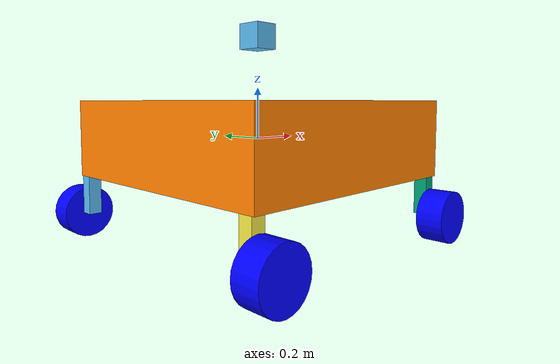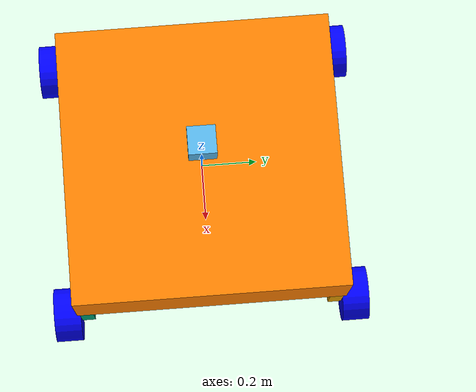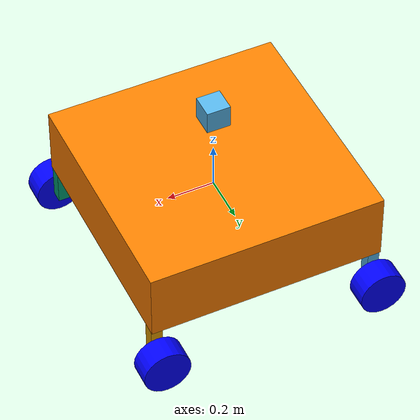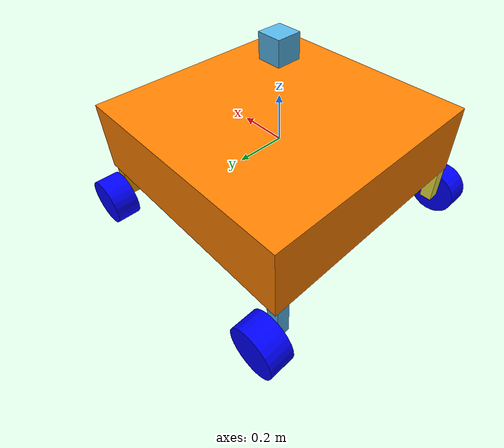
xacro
<?xml version="1.0"?>
<robot name="durian_robot" xmlns:xacro="http://www.ros.org/wiki/xacro">
    <!-- Core -->
    <xacro:include filename="$(find robot_description)/urdf/robot_core.xacro"/>
    <!-- Gazebo -->
    <xacro:include filename="$(find robot_description)/urdf/robot_gazebo.xacro"/>
    <!-- Sensors -->
    <xacro:include filename="$(find robot_description)/urdf/robot_sensor.xacro"/>

</robot>

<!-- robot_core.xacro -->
<robot xmlns:xacro="http://www.ros.org/wiki/xacro" >
    <!-- Include xacro -->
    <xacro:include filename="$(find robot_description)/urdf/robot_steering.xacro"/>
    <xacro:include filename="$(find robot_description)/urdf/robot_type.xacro"/>

    <!-- Base structure -->
    <link name="base_link">
      <visual>
        <origin xyz="0 0 0" rpy="0 0 0"/>
        <geometry>
          <box size="1 1 0.3"/>
        </geometry>
        <material name="Orange">
          <color rgba="1.0 0.5 0 1.0"/>
        </material>
      </visual>
      <collision>
        <origin xyz="0 0 0" rpy="0 0 0"/>
        <geometry>
          <box size="1 1 0.3"/>
        </geometry>
      </collision>
      <inertial>
        <mass value="5.0"/>
        <origin xyz="0 0 0" rpy="0 0 0"/>
        <inertia ixx="0.1" ixy="0.0" ixz="0.0"
                 iyy="0.1" iyz="0.0"
                 izz="0.1"/>
      </inertial>
    </link>

    <!-- Wheel -->
    <xacro:wheel prefix="steering_1_link" number="1" pos_x="0" pos_y="0.075" pos_z="-0.075"/>
    <xacro:wheel prefix="steering_2_link" number="2" pos_x="0" pos_y="0.075" pos_z="-0.075"/>
    <xacro:wheel prefix="steering_3_link" number="3" pos_x="0" pos_y="-0.075" pos_z="-0.075"/>
    <xacro:wheel prefix="steering_4_link" number="4" pos_x="0" pos_y="-0.075" pos_z="-0.075"/>

</robot>

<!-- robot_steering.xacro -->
<robot name="durian_robot" xmlns:xacro="http://www.ros.org/wiki/xacro">

    <!-- Joint -->
    <joint name="steering_1_joint" type="revolute">
      <parent link="base_link"/>
      <child link="steering_1_link"/>
      <axis xyz="0 0 1"/>
      <origin xyz="0.475 0.465 -0.225" rpy="0 0 0"/>
      <limit effort="100.0" velocity="2.0" lower="-0.7854" upper="0"/>
    </joint>
    <joint name="steering_2_joint" type="revolute">
      <parent link="base_link"/>
      <child link="steering_2_link"/>
      <axis xyz="0 0 1"/>
      <origin xyz="-0.475 0.465 -0.225" rpy="0 0 0"/>
      <limit effort="100.0" velocity="2.0" lower="0" upper="0.7854"/>
    </joint>
    <joint name="steering_3_joint" type="revolute">
      <parent link="base_link"/>
      <child link="steering_3_link"/>
      <axis xyz="0 0 1"/>
      <origin xyz="0.475 -0.465 -0.225" rpy="0 0 0"/>
      <limit effort="100.0" velocity="2.0" lower="0" upper="0.7854"/>
    </joint>
    <joint name="steering_4_joint" type="revolute">
      <parent link="base_link"/>
      <child link="steering_4_link"/>
      <axis xyz="0 0 1"/>
      <origin xyz="-0.475 -0.465 -0.225" rpy="0 0 0"/>
      <limit effort="100.0" velocity="2.0" lower="-0.7854" upper="0"/>
    </joint>

    <!-- Link -->
    <link name="steering_1_link">
      <visual>
        <origin xyz="0 0 0" rpy="0 0 0"/>
        <geometry>
          <box size="0.05 0.05 0.15"/>
        </geometry>
      </visual>
      <collision>
        <origin xyz="0 0 0" rpy="0 0 0"/>
        <geometry>
          <box size="0.05 0.05 0.15"/>
        </geometry>
      </collision>
      <inertial>
        <origin xyz="0 0 0" rpy="0 0 0"/>
        <mass value="1.0"/>
        <inertia ixx="0.01" ixy="0.0" ixz="0.0" iyy="0.01" iyz="0.0" izz="0.01"/>
      </inertial>
    </link>
    <link name="steering_2_link">
      <visual>
        <origin xyz="0 0 0" rpy="0 0 0"/>
        <geometry>
          <box size="0.05 0.05 0.15"/>
        </geometry>
      </visual>
      <collision>
        <origin xyz="0 0 0" rpy="0 0 0"/>
        <geometry>
          <box size="0.05 0.05 0.15"/>
        </geometry>
      </collision>
      <inertial>
        <origin xyz="0 0 0" rpy="0 0 0"/>
        <mass value="1.0"/>
        <inertia ixx="0.01" ixy="0.0" ixz="0.0" iyy="0.01" iyz="0.0" izz="0.01"/>
      </inertial>
    </link>
    <link name="steering_3_link">
      <visual>
        <origin xyz="0 0 0" rpy="0 0 0"/>
        <geometry>
          <box size="0.05 0.05 0.15"/>
        </geometry>
      </visual>
      <collision>
        <origin xyz="0 0 0" rpy="0 0 0"/>
        <geometry>
          <box size="0.05 0.05 0.15"/>
        </geometry>
      </collision>
      <inertial>
        <origin xyz="0 0 0" rpy="0 0 0"/>
        <mass value="1.0"/>
        <inertia ixx="0.01" ixy="0.0" ixz="0.0" iyy="0.01" iyz="0.0" izz="0.01"/>
      </inertial>
    </link>
    <link name="steering_4_link">
      <visual>
        <origin xyz="0 0 0" rpy="0 0 0"/>
        <geometry>
          <box size="0.05 0.05 0.15"/>
        </geometry>
      </visual>
      <collision>
        <origin xyz="0 0 0" rpy="0 0 0"/>
        <geometry>
          <box size="0.05 0.05 0.15"/>
        </geometry>
      </collision>
      <inertial>
        <origin xyz="0 0 0" rpy="0 0 0"/>
        <mass value="1.0"/>
        <inertia ixx="0.01" ixy="0.0" ixz="0.0" iyy="0.01" iyz="0.0" izz="0.01"/>
      </inertial>
    </link>

</robot>

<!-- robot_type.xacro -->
<robot xmlns:xacro="http://www.ros.org/wiki/xacro">
  <xacro:macro name="wheel" params="prefix number pos_x pos_y pos_z">

    <!-- Joint -->
    <joint name="wheel_${number}_joint" type="continuous">
      <parent link="${prefix}"/>
      <child link="wheel_${number}_link"/>
      <axis xyz="0 0 1"/>
      <origin xyz="${pos_x} ${pos_y} ${pos_z}" rpy="-1.57 0 0"/>
      <limit effort="100.0" velocity="20.0" lower="-3.14" upper="3.14"/>
    </joint>

    <!-- Link -->
    <link name="wheel_${number}_link">
      <visual>
        <origin xyz="0 0 0" rpy="0 0 0"/>
        <geometry>
          <cylinder radius="0.1" length="0.1"/>
        </geometry>
        <material name="Blue">
          <color rgba="0.0 0.0 1.0 1.0"/>
        </material>
      </visual>
      <collision>
        <origin xyz="0 0 0" rpy="0 0 0"/>
        <geometry>
          <cylinder radius="0.1" length="0.1"/>
        </geometry>
      </collision>
      <inertial>
        <origin xyz="0 0 0" rpy="0 0 0"/>
        <mass value="1.0"/>
        <inertia ixx="0.01" ixy="0.0" ixz="0.0" iyy="0.01" iyz="0.0" izz="0.01"/>
      </inertial>
    </link>
  </xacro:macro>
</robot>

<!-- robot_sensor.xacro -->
<robot xmlns:xacro="http://www.ros.org/wiki/xacro">
  <!-- IMU -->
  <gazebo reference="base_link">
      <sensor name="imu_sensor" type="imu">
          <pose relative_to="base_link">0 0 0 0 0 0</pose>
          <always_on>1</always_on>
          <update_rate>1000.0</update_rate>
          <topic>imu</topic>
          <gz_frame_id>base_link</gz_frame_id>
      </sensor>
  </gazebo>

  <!-- Camera link -->
  <link name="camera_link">
    <visual>
      <geometry>
        <box size="0.1 0.1 0.1"/>
      </geometry>
    </visual>
    <collision>
      <geometry>
        <box size="0.1 0.1 0.1"/>
      </geometry>
    </collision>
    <inertial>
      <mass value="0.0001"/>
        <inertia ixx="0.1" ixy="0" ixz="0" iyy="0.1" iyz="0" izz="0.1" />
    </inertial>
  </link>

  <!-- Camera joint -->
  <joint name="camera_joint" type="fixed">
    <parent link="base_link"/>
    <child link="camera_link"/>
    <origin xyz="0 0 0.4" rpy="0 -1.57 0"/>
  </joint>

  <!-- Camera sensor -->
  <gazebo reference="camera_link">
    <sensor name="front_cam" type="camera">
      <gz_frame_id>base_link</gz_frame_id>
      <camera>
        <horizontal_fov>1.047</horizontal_fov>
        <image>
          <width>1920</width>
          <height>1080</height>
        </image>
        <clip>
          <near>0.1</near>
          <far>100</far>
        </clip>
      </camera>
      <always_on>1</always_on>
      <update_rate>30</update_rate>
      <visualize>true</visualize>
      <topic>camera_up</topic>
    </sensor>
  </gazebo>
</robot>
